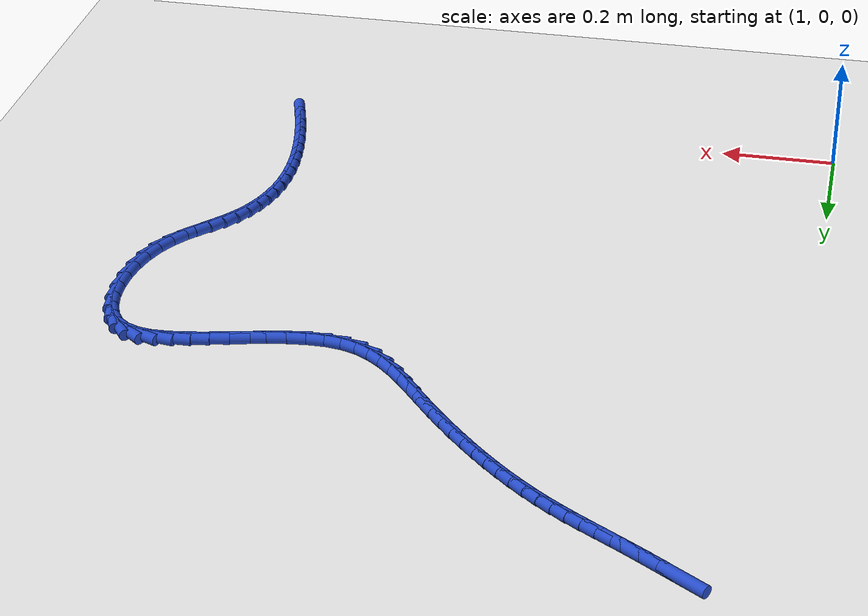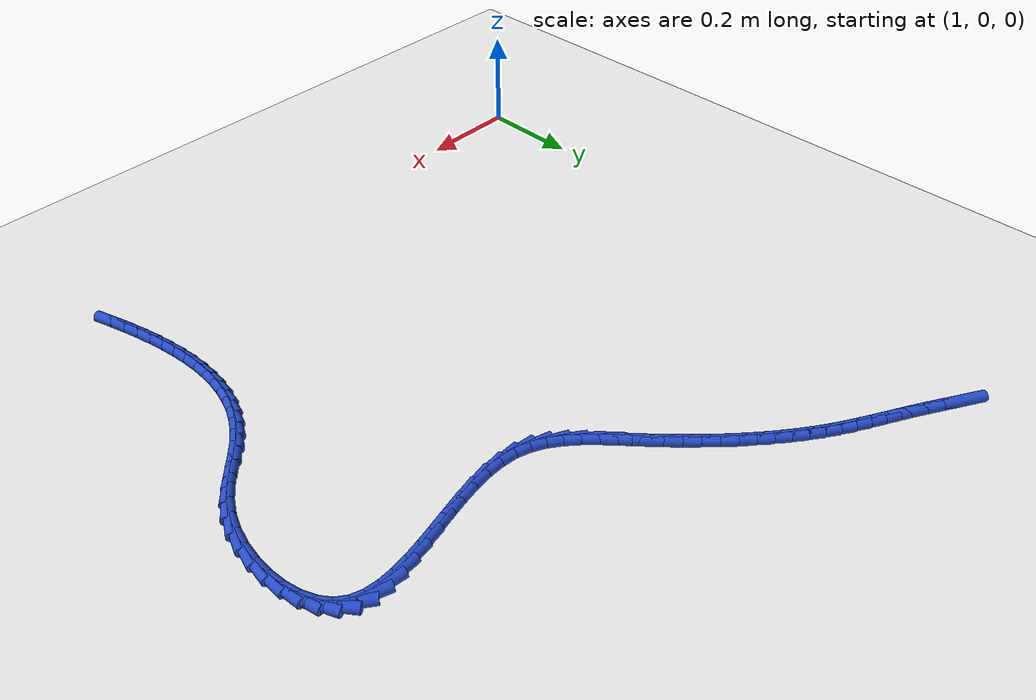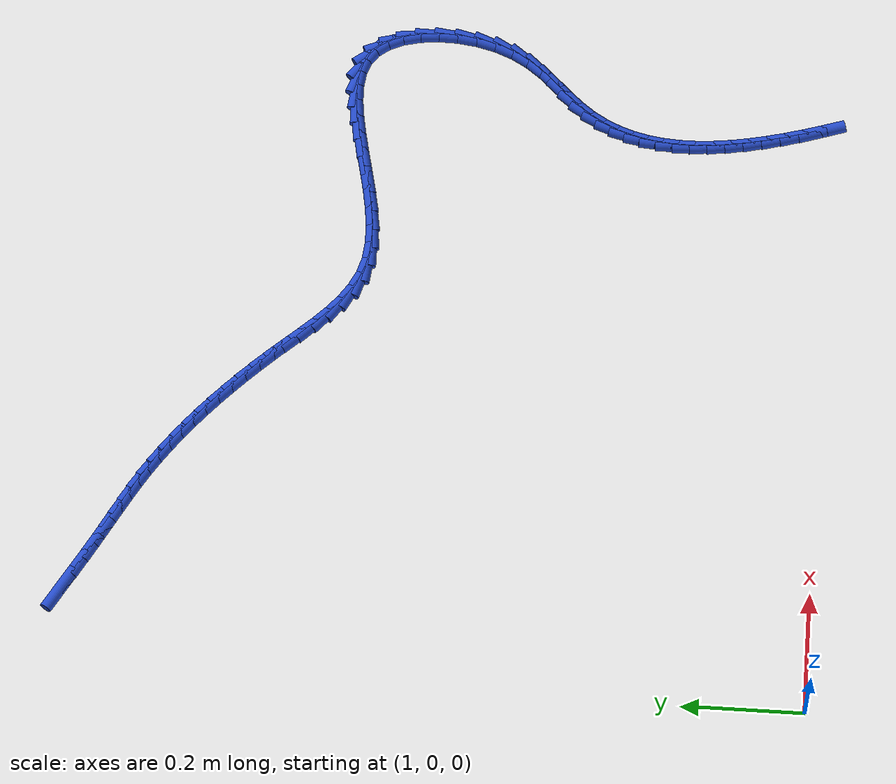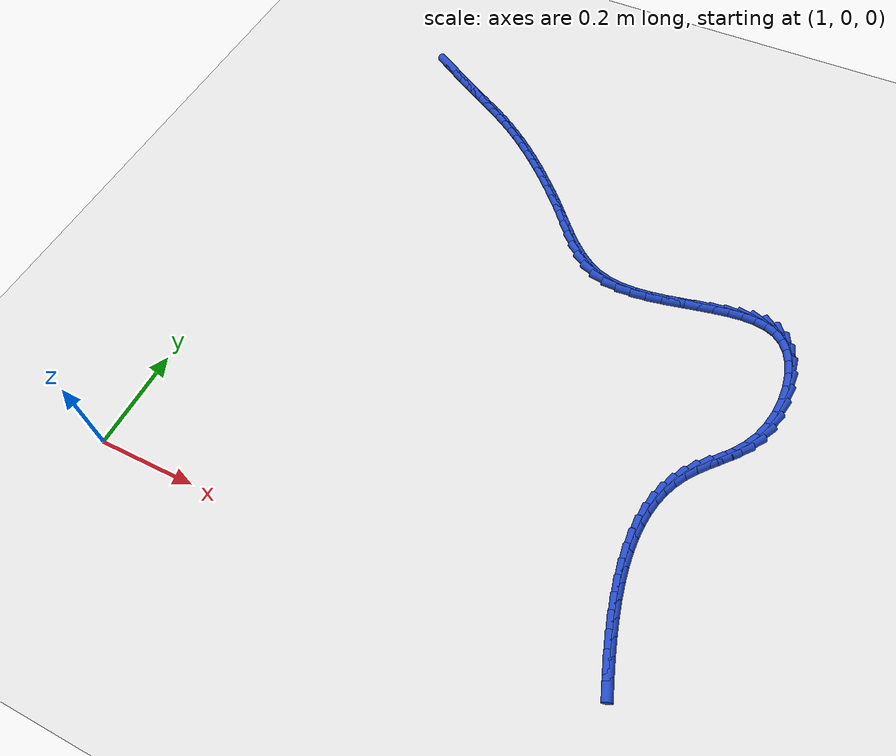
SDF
<sdf version="1.6">
 <world name="default">
  <model name="ground_plane">
   <static>1</static>
   <link name="link">
    <collision name="collision">
     <geometry><plane><normal>0 0 1</normal><size>100 100</size></plane></geometry>
     <surface><friction><ode><mu>100</mu><mu2>50</mu2></ode></friction></surface>
    </collision>
    <visual name="visual">
     <cast_shadows>0</cast_shadows>
     <geometry><plane><normal>0 0 1</normal><size>100 100</size></plane></geometry>
     <material>
      <script><uri>file://media/materials/scripts/gazebo.material</uri><name>Gazebo/WhiteGlow</name></script>
     </material>
    </visual>
   </link>
  </model>
  <model name="line">
   <link name="link_68">
    <pose>1.1357770810342989 1.2048211387405365 0.01 0 1.57 -0.5463123329642405</pose>
    <collision name="collision">
     <geometry><cylinder><radius>0.01</radius><length>0.08</length></cylinder></geometry>
    </collision>
    <visual name="visual">
     <material>
      <script><name>Gazebo/Blue</name><uri>file://media/materials/scripts/gazebo.material</uri></script>
     </material>
     <geometry><cylinder><radius>0.01</radius><length>0.08</length></cylinder></geometry>
    </visual>
   </link>
   <link name="link_69">
    <pose>1.1661784131051967 1.1863358281987884 0.01 0 1.57 -0.5458303144156916</pose>
    <collision name="collision">
     <geometry><cylinder><radius>0.01</radius><length>0.08</length></cylinder></geometry>
    </collision>
    <visual name="visual">
     <material>
      <script><name>Gazebo/Blue</name><uri>file://media/materials/scripts/gazebo.material</uri></script>
     </material>
     <geometry><cylinder><radius>0.01</radius><length>0.08</length></cylinder></geometry>
    </visual>
   </link>
   <link name="link_70">
    <pose>1.1953849499846465 1.1685962815901338 0.01 0 1.57 -0.5340886859717227</pose>
    <collision name="collision">
     <geometry><cylinder><radius>0.01</radius><length>0.08</length></cylinder></geometry>
    </collision>
    <visual name="visual">
     <material>
      <script><name>Gazebo/Blue</name><uri>file://media/materials/scripts/gazebo.material</uri></script>
     </material>
     <geometry><cylinder><radius>0.01</radius><length>0.08</length></cylinder></geometry>
    </visual>
   </link>
   <link name="link_71">
    <pose>1.2229783987465066 1.1522768935042664 0.01 0 1.57 -0.5232775400020789</pose>
    <collision name="collision">
     <geometry><cylinder><radius>0.01</radius><length>0.08</length></cylinder></geometry>
    </collision>
    <visual name="visual">
     <material>
      <script><name>Gazebo/Blue</name><uri>file://media/materials/scripts/gazebo.material</uri></script>
     </material>
     <geometry><cylinder><radius>0.01</radius><length>0.08</length></cylinder></geometry>
    </visual>
   </link>
   <link name="link_72">
    <pose>1.2490227786914303 1.1372513168399483 0.01 0 1.57 -0.5201498486941989</pose>
    <collision name="collision">
     <geometry><cylinder><radius>0.01</radius><length>0.08</length></cylinder></geometry>
    </collision>
    <visual name="visual">
     <material>
      <script><name>Gazebo/Blue</name><uri>file://media/materials/scripts/gazebo.material</uri></script>
     </material>
     <geometry><cylinder><radius>0.01</radius><length>0.08</length></cylinder></geometry>
    </visual>
   </link>
   <link name="link_73">
    <pose>1.2737738505533074 1.1230748726126907 0.01 0 1.57 -0.5261728567336321</pose>
    <collision name="collision">
     <geometry><cylinder><radius>0.01</radius><length>0.08</length></cylinder></geometry>
    </collision>
    <visual name="visual">
     <material>
      <script><name>Gazebo/Blue</name><uri>file://media/materials/scripts/gazebo.material</uri></script>
     </material>
     <geometry><cylinder><radius>0.01</radius><length>0.08</length></cylinder></geometry>
    </visual>
   </link>
   <link name="link_74">
    <pose>1.2974878639194398 1.109302070236542 0.01 0 1.57 -0.5421723792940519</pose>
    <collision name="collision">
     <geometry><cylinder><radius>0.01</radius><length>0.08</length></cylinder></geometry>
    </collision>
    <visual name="visual">
     <material>
      <script><name>Gazebo/Blue</name><uri>file://media/materials/scripts/gazebo.material</uri></script>
     </material>
     <geometry><cylinder><radius>0.01</radius><length>0.08</length></cylinder></geometry>
    </visual>
   </link>
   <link name="link_75">
    <pose>1.3204210683771311 1.0954874191255504 0.01 0 1.57 -0.5680603384175988</pose>
    <collision name="collision">
     <geometry><cylinder><radius>0.01</radius><length>0.08</length></cylinder></geometry>
    </collision>
    <visual name="visual">
     <material>
      <script><name>Gazebo/Blue</name><uri>file://media/materials/scripts/gazebo.material</uri></script>
     </material>
     <geometry><cylinder><radius>0.01</radius><length>0.08</length></cylinder></geometry>
    </visual>
   </link>
   <link name="link_76">
    <pose>1.3428297135136829 1.0811854286937643 0.01 0 1.57 -0.6015272644035145</pose>
    <collision name="collision">
     <geometry><cylinder><radius>0.01</radius><length>0.08</length></cylinder></geometry>
    </collision>
    <visual name="visual">
     <material>
      <script><name>Gazebo/Blue</name><uri>file://media/materials/scripts/gazebo.material</uri></script>
     </material>
     <geometry><cylinder><radius>0.01</radius><length>0.08</length></cylinder></geometry>
    </visual>
   </link>
   <link name="link_77">
    <pose>1.364939235853453 1.066009867217549 0.01 0 1.57 -0.6350300738799874</pose>
    <collision name="collision">
     <geometry><cylinder><radius>0.01</radius><length>0.08</length></cylinder></geometry>
    </collision>
    <visual name="visual">
     <material>
      <script><name>Gazebo/Blue</name><uri>file://media/materials/scripts/gazebo.material</uri></script>
     </material>
     <geometry><cylinder><radius>0.01</radius><length>0.08</length></cylinder></geometry>
    </visual>
   </link>
   <link name="link_78">
    <pose>1.3868079012809622 1.0498960010971938 0.01 0 1.57 -0.6663597182857146</pose>
    <collision name="collision">
     <geometry><cylinder><radius>0.01</radius><length>0.08</length></cylinder></geometry>
    </collision>
    <visual name="visual">
     <material>
      <script><name>Gazebo/Blue</name><uri>file://media/materials/scripts/gazebo.material</uri></script>
     </material>
     <geometry><cylinder><radius>0.01</radius><length>0.08</length></cylinder></geometry>
    </visual>
   </link>
   <link name="link_79">
    <pose>1.4084375502151882 1.0328876126860969 0.01 0 1.57 -0.695620978715392</pose>
    <collision name="collision">
     <geometry><cylinder><radius>0.01</radius><length>0.08</length></cylinder></geometry>
    </collision>
    <visual name="visual">
     <material>
      <script><name>Gazebo/Blue</name><uri>file://media/materials/scripts/gazebo.material</uri></script>
     </material>
     <geometry><cylinder><radius>0.01</radius><length>0.08</length></cylinder></geometry>
    </visual>
   </link>
   <link name="link_80">
    <pose>1.4298299793810063 1.0150285683689932 0.01 0 1.57 -0.722923203615513</pose>
    <collision name="collision">
     <geometry><cylinder><radius>0.01</radius><length>0.08</length></cylinder></geometry>
    </collision>
    <visual name="visual">
     <material>
      <script><name>Gazebo/Blue</name><uri>file://media/materials/scripts/gazebo.material</uri></script>
     </material>
     <geometry><cylinder><radius>0.01</radius><length>0.08</length></cylinder></geometry>
    </visual>
   </link>
   <link name="link_81">
    <pose>1.4509869855032915 0.996362734530617 0.01 0 1.57 -0.7483755914364022</pose>
    <collision name="collision">
     <geometry><cylinder><radius>0.01</radius><length>0.08</length></cylinder></geometry>
    </collision>
    <visual name="visual">
     <material>
      <script><name>Gazebo/Blue</name><uri>file://media/materials/scripts/gazebo.material</uri></script>
     </material>
     <geometry><cylinder><radius>0.01</radius><length>0.08</length></cylinder></geometry>
    </visual>
   </link>
   <link name="link_82">
    <pose>1.4719103653069192 0.9769339775557031 0.01 0 1.57 -0.7720849208307531</pose>
    <collision name="collision">
     <geometry><cylinder><radius>0.01</radius><length>0.08</length></cylinder></geometry>
    </collision>
    <visual name="visual">
     <material>
      <script><name>Gazebo/Blue</name><uri>file://media/materials/scripts/gazebo.material</uri></script>
     </material>
     <geometry><cylinder><radius>0.01</radius><length>0.08</length></cylinder></geometry>
    </visual>
   </link>
   <link name="link_83">
    <pose>1.4926019155167638 0.9567861638289865 0.01 0 1.57 -0.7941539271229002</pose>
    <collision name="collision">
     <geometry><cylinder><radius>0.01</radius><length>0.08</length></cylinder></geometry>
    </collision>
    <visual name="visual">
     <material>
      <script><name>Gazebo/Blue</name><uri>file://media/materials/scripts/gazebo.material</uri></script>
     </material>
     <geometry><cylinder><radius>0.01</radius><length>0.08</length></cylinder></geometry>
    </visual>
   </link>
   <link name="link_84">
    <pose>1.5130634328577 0.9359631597352014 0.01 0 1.57 -0.8146801944410829</pose>
    <collision name="collision">
     <geometry><cylinder><radius>0.01</radius><length>0.08</length></cylinder></geometry>
    </collision>
    <visual name="visual">
     <material>
      <script><name>Gazebo/Blue</name><uri>file://media/materials/scripts/gazebo.material</uri></script>
     </material>
     <geometry><cylinder><radius>0.01</radius><length>0.08</length></cylinder></geometry>
    </visual>
   </link>
   <link name="link_85">
    <pose>1.5332967140546034 0.9145088316590827 0.01 0 1.57 -0.83375544834641</pose>
    <collision name="collision">
     <geometry><cylinder><radius>0.01</radius><length>0.08</length></cylinder></geometry>
    </collision>
    <visual name="visual">
     <material>
      <script><name>Gazebo/Blue</name><uri>file://media/materials/scripts/gazebo.material</uri></script>
     </material>
     <geometry><cylinder><radius>0.01</radius><length>0.08</length></cylinder></geometry>
    </visual>
   </link>
   <link name="link_86">
    <pose>1.5533035558323482 0.8924670459853654 0.01 0 1.57 -0.8514618589272555</pose>
    <collision name="collision">
     <geometry><cylinder><radius>0.01</radius><length>0.08</length></cylinder></geometry>
    </collision>
    <visual name="visual">
     <material>
      <script><name>Gazebo/Blue</name><uri>file://media/materials/scripts/gazebo.material</uri></script>
     </material>
     <geometry><cylinder><radius>0.01</radius><length>0.08</length></cylinder></geometry>
    </visual>
   </link>
   <link name="link_87">
    <pose>1.5730858013282956 0.869881766142645 0.01 0 1.57 -0.8622722781272977</pose>
    <collision name="collision">
     <geometry><cylinder><radius>0.01</radius><length>0.08</length></cylinder></geometry>
    </collision>
    <visual name="visual">
     <material>
      <script><name>Gazebo/Blue</name><uri>file://media/materials/scripts/gazebo.material</uri></script>
     </material>
     <geometry><cylinder><radius>0.01</radius><length>0.08</length></cylinder></geometry>
    </visual>
   </link>
   <link name="link_88">
    <pose>1.592725311097373 0.8469642639692991 0.01 0 1.57 -0.8491846023364095</pose>
    <collision name="collision">
     <geometry><cylinder><radius>0.01</radius><length>0.08</length></cylinder></geometry>
    </collision>
    <visual name="visual">
     <material>
      <script><name>Gazebo/Blue</name><uri>file://media/materials/scripts/gazebo.material</uri></script>
     </material>
     <geometry><cylinder><radius>0.01</radius><length>0.08</length></cylinder></geometry>
    </visual>
   </link>
   <link name="link_89">
    <pose>1.6125481294542976 0.8244363751007748 0.01 0 1.57 -0.8079567585711803</pose>
    <collision name="collision">
     <geometry><cylinder><radius>0.01</radius><length>0.08</length></cylinder></geometry>
    </collision>
    <visual name="visual">
     <material>
      <script><name>Gazebo/Blue</name><uri>file://media/materials/scripts/gazebo.material</uri></script>
     </material>
     <geometry><cylinder><radius>0.01</radius><length>0.08</length></cylinder></geometry>
    </visual>
   </link>
   <link name="link_90">
    <pose>1.632926714791288 0.8031169823621721 0.01 0 1.57 -0.7358118674385963</pose>
    <collision name="collision">
     <geometry><cylinder><radius>0.01</radius><length>0.08</length></cylinder></geometry>
    </collision>
    <visual name="visual">
     <material>
      <script><name>Gazebo/Blue</name><uri>file://media/materials/scripts/gazebo.material</uri></script>
     </material>
     <geometry><cylinder><radius>0.01</radius><length>0.08</length></cylinder></geometry>
    </visual>
   </link>
   <link name="link_91">
    <pose>1.654233525500563 0.7838249685785925 0.01 0 1.57 -0.628910202059338</pose>
    <collision name="collision">
     <geometry><cylinder><radius>0.01</radius><length>0.08</length></cylinder></geometry>
    </collision>
    <visual name="visual">
     <material>
      <script><name>Gazebo/Blue</name><uri>file://media/materials/scripts/gazebo.material</uri></script>
     </material>
     <geometry><cylinder><radius>0.01</radius><length>0.08</length></cylinder></geometry>
    </visual>
   </link>
   <link name="link_92">
    <pose>1.6768410199743407 0.7673792165751351 0.01 0 1.57 -0.48452065969462255</pose>
    <collision name="collision">
     <geometry><cylinder><radius>0.01</radius><length>0.08</length></cylinder></geometry>
    </collision>
    <visual name="visual">
     <material>
      <script><name>Gazebo/Blue</name><uri>file://media/materials/scripts/gazebo.material</uri></script>
     </material>
     <geometry><cylinder><radius>0.01</radius><length>0.08</length></cylinder></geometry>
    </visual>
   </link>
   <link name="link_93">
    <pose>1.701121656604841 0.7545986091769015 0.01 0 1.57 -0.3056872672320033</pose>
    <collision name="collision">
     <geometry><cylinder><radius>0.01</radius><length>0.08</length></cylinder></geometry>
    </collision>
    <visual name="visual">
     <material>
      <script><name>Gazebo/Blue</name><uri>file://media/materials/scripts/gazebo.material</uri></script>
     </material>
     <geometry><cylinder><radius>0.01</radius><length>0.08</length></cylinder></geometry>
    </visual>
   </link>
   <link name="link_94">
    <pose>1.7274429744377033 0.7462921599410293 0.01 0 1.57 -0.12733895743373308</pose>
    <collision name="collision">
     <geometry><cylinder><radius>0.01</radius><length>0.08</length></cylinder></geometry>
    </collision>
    <visual name="visual">
     <material>
      <script><name>Gazebo/Blue</name><uri>file://media/materials/scripts/gazebo.material</uri></script>
     </material>
     <geometry><cylinder><radius>0.01</radius><length>0.08</length></cylinder></geometry>
    </visual>
   </link>
   <link name="link_95">
    <pose>1.7558656057356123 0.7426531613665084 0.01 0 1.57 0.0084236511318557</pose>
    <collision name="collision">
     <geometry><cylinder><radius>0.01</radius><length>0.08</length></cylinder></geometry>
    </collision>
    <visual name="visual">
     <material>
      <script><name>Gazebo/Blue</name><uri>file://media/materials/scripts/gazebo.material</uri></script>
     </material>
     <geometry><cylinder><radius>0.01</radius><length>0.08</length></cylinder></geometry>
    </visual>
   </link>
   <link name="link_96">
    <pose>1.7859675974917444 0.7429067360411731 0.01 0 1.57 0.1045553923350768</pose>
    <collision name="collision">
     <geometry><cylinder><radius>0.01</radius><length>0.08</length></cylinder></geometry>
    </collision>
    <visual name="visual">
     <material>
      <script><name>Gazebo/Blue</name><uri>file://media/materials/scripts/gazebo.material</uri></script>
     </material>
     <geometry><cylinder><radius>0.01</radius><length>0.08</length></cylinder></geometry>
    </visual>
   </link>
   <link name="link_97">
    <pose>1.8172846693580387 0.7461930887967738 0.01 0 1.57 0.16862647370334405</pose>
    <collision name="collision">
     <geometry><cylinder><radius>0.01</radius><length>0.08</length></cylinder></geometry>
    </collision>
    <visual name="visual">
     <material>
      <script><name>Gazebo/Blue</name><uri>file://media/materials/scripts/gazebo.material</uri></script>
     </material>
     <geometry><cylinder><radius>0.01</radius><length>0.08</length></cylinder></geometry>
    </visual>
   </link>
   <link name="link_98">
    <pose>1.8493525409864335 0.75165242446506 0.01 0 1.57 0.20634385514683526</pose>
    <collision name="collision">
     <geometry><cylinder><radius>0.01</radius><length>0.08</length></cylinder></geometry>
    </collision>
    <visual name="visual">
     <material>
      <script><name>Gazebo/Blue</name><uri>file://media/materials/scripts/gazebo.material</uri></script>
     </material>
     <geometry><cylinder><radius>0.01</radius><length>0.08</length></cylinder></geometry>
    </visual>
   </link>
   <link name="link_99">
    <pose>1.881706932028867 0.7584249478777815 0.01 0 1.57 0.2209054252460275</pose>
    <collision name="collision">
     <geometry><cylinder><radius>0.01</radius><length>0.08</length></cylinder></geometry>
    </collision>
    <visual name="visual">
     <material>
      <script><name>Gazebo/Blue</name><uri>file://media/materials/scripts/gazebo.material</uri></script>
     </material>
     <geometry><cylinder><radius>0.01</radius><length>0.08</length></cylinder></geometry>
    </visual>
   </link>
   <link name="link_100">
    <pose>1.9138835621372785 0.7656508638666881 0.01 0 1.57 0.21297542789073065</pose>
    <collision name="collision">
     <geometry><cylinder><radius>0.01</radius><length>0.08</length></cylinder></geometry>
    </collision>
    <visual name="visual">
     <material>
      <script><name>Gazebo/Blue</name><uri>file://media/materials/scripts/gazebo.material</uri></script>
     </material>
     <geometry><cylinder><radius>0.01</radius><length>0.08</length></cylinder></geometry>
    </visual>
   </link>
   <link name="link_101">
    <pose>1.945418150963607 0.7724703772635303 0.01 0 1.57 0.18051840983524722</pose>
    <collision name="collision">
     <geometry><cylinder><radius>0.01</radius><length>0.08</length></cylinder></geometry>
    </collision>
    <visual name="visual">
     <material>
      <script><name>Gazebo/Blue</name><uri>file://media/materials/scripts/gazebo.material</uri></script>
     </material>
     <geometry><cylinder><radius>0.01</radius><length>0.08</length></cylinder></geometry>
    </visual>
   </link>
   <link name="link_102">
    <pose>1.9758464181597897 0.7780236929000572 0.01 0 1.57 0.11821271880863611</pose>
    <collision name="collision">
     <geometry><cylinder><radius>0.01</radius><length>0.08</length></cylinder></geometry>
    </collision>
    <visual name="visual">
     <material>
      <script><name>Gazebo/Blue</name><uri>file://media/materials/scripts/gazebo.material</uri></script>
     </material>
     <geometry><cylinder><radius>0.01</radius><length>0.08</length></cylinder></geometry>
    </visual>
   </link>
   <link name="link_103">
    <pose>2.0047040833777667 0.7814510156080194 0.01 0 1.57 0.016459691691075782</pose>
    <collision name="collision">
     <geometry><cylinder><radius>0.01</radius><length>0.08</length></cylinder></geometry>
    </collision>
    <visual name="visual">
     <material>
      <script><name>Gazebo/Blue</name><uri>file://media/materials/scripts/gazebo.material</uri></script>
     </material>
     <geometry><cylinder><radius>0.01</radius><length>0.08</length></cylinder></geometry>
    </visual>
   </link>
   <link name="link_104">
    <pose>2.031526866269475 0.7818925502191663 0.01 0 1.57 -0.13904520894071898</pose>
    <collision name="collision">
     <geometry><cylinder><radius>0.01</radius><length>0.08</length></cylinder></geometry>
    </collision>
    <visual name="visual">
     <material>
      <script><name>Gazebo/Blue</name><uri>file://media/materials/scripts/gazebo.material</uri></script>
     </material>
     <geometry><cylinder><radius>0.01</radius><length>0.08</length></cylinder></geometry>
    </visual>
   </link>
   <link name="link_105">
    <pose>2.0558504864868556 0.7784885015652481 0.01 0 1.57 -0.36284260278447733</pose>
    <collision name="collision">
     <geometry><cylinder><radius>0.01</radius><length>0.08</length></cylinder></geometry>
    </collision>
    <visual name="visual">
     <material>
      <script><name>Gazebo/Blue</name><uri>file://media/materials/scripts/gazebo.material</uri></script>
     </material>
     <geometry><cylinder><radius>0.01</radius><length>0.08</length></cylinder></geometry>
    </visual>
   </link>
   <link name="link_106">
    <pose>2.0772106636818455 0.7703790744780145 0.01 0 1.57 -0.6514266339358388</pose>
    <collision name="collision">
     <geometry><cylinder><radius>0.01</radius><length>0.08</length></cylinder></geometry>
    </collision>
    <visual name="visual">
     <material>
      <script><name>Gazebo/Blue</name><uri>file://media/materials/scripts/gazebo.material</uri></script>
     </material>
     <geometry><cylinder><radius>0.01</radius><length>0.08</length></cylinder></geometry>
    </visual>
   </link>
   <link name="link_107">
    <pose>2.095143505523408 0.756706036726898 0.01 0 1.57 -0.9439148592866845</pose>
    <collision name="collision">
     <geometry><cylinder><radius>0.01</radius><length>0.08</length></cylinder></geometry>
    </collision>
    <visual name="visual">
     <material>
      <script><name>Gazebo/Blue</name><uri>file://media/materials/scripts/gazebo.material</uri></script>
     </material>
     <geometry><cylinder><radius>0.01</radius><length>0.08</length></cylinder></geometry>
    </visual>
   </link>
   <link name="link_108">
    <pose>2.1093163440515665 0.7371397295749088 0.01 0 1.57 -1.1692123052958023</pose>
    <collision name="collision">
     <geometry><cylinder><radius>0.01</radius><length>0.08</length></cylinder></geometry>
    </collision>
    <visual name="visual">
     <material>
      <script><name>Gazebo/Blue</name><uri>file://media/materials/scripts/gazebo.material</uri></script>
     </material>
     <geometry><cylinder><radius>0.01</radius><length>0.08</length></cylinder></geometry>
    </visual>
   </link>
   <link name="link_109">
    <pose>2.1197180453631868 0.7126456376975037 0.01 0 1.57 -1.3391033209580923</pose>
    <collision name="collision">
     <geometry><cylinder><radius>0.01</radius><length>0.08</length></cylinder></geometry>
    </collision>
    <visual name="visual">
     <material>
      <script><name>Gazebo/Blue</name><uri>file://media/materials/scripts/gazebo.material</uri></script>
     </material>
     <geometry><cylinder><radius>0.01</radius><length>0.08</length></cylinder></geometry>
    </visual>
   </link>
   <link name="link_110">
    <pose>2.1263858178353443 0.6843839691110243 0.01 0 1.57 -1.4748448871292472</pose>
    <collision name="collision">
     <geometry><cylinder><radius>0.01</radius><length>0.08</length></cylinder></geometry>
    </collision>
    <visual name="visual">
     <material>
      <script><name>Gazebo/Blue</name><uri>file://media/materials/scripts/gazebo.material</uri></script>
     </material>
     <geometry><cylinder><radius>0.01</radius><length>0.08</length></cylinder></geometry>
    </visual>
   </link>
   <link name="link_111">
    <pose>2.1293568698451155 0.653514931831813 0.01 0 1.57 1.5494956790149559</pose>
    <collision name="collision">
     <geometry><cylinder><radius>0.01</radius><length>0.08</length></cylinder></geometry>
    </collision>
    <visual name="visual">
     <material>
      <script><name>Gazebo/Blue</name><uri>file://media/materials/scripts/gazebo.material</uri></script>
     </material>
     <geometry><cylinder><radius>0.01</radius><length>0.08</length></cylinder></geometry>
    </visual>
   </link>
   <link name="link_112">
    <pose>2.1286684097695767 0.6211987338762124 0.01 0 1.57 1.4393395874036088</pose>
    <collision name="collision">
     <geometry><cylinder><radius>0.01</radius><length>0.08</length></cylinder></geometry>
    </collision>
    <visual name="visual">
     <material>
      <script><name>Gazebo/Blue</name><uri>file://media/materials/scripts/gazebo.material</uri></script>
     </material>
     <geometry><cylinder><radius>0.01</radius><length>0.08</length></cylinder></geometry>
    </visual>
   </link>
   <link name="link_113">
    <pose>2.124357645985804 0.5885955832605646 0.01 0 1.57 1.3269040284185774</pose>
    <collision name="collision">
     <geometry><cylinder><radius>0.01</radius><length>0.08</length></cylinder></geometry>
    </collision>
    <visual name="visual">
     <material>
      <script><name>Gazebo/Blue</name><uri>file://media/materials/scripts/gazebo.material</uri></script>
     </material>
     <geometry><cylinder><radius>0.01</radius><length>0.08</length></cylinder></geometry>
    </visual>
   </link>
   <link name="link_114">
    <pose>2.116461786870872 0.5568656880012111 0.01 0 1.57 1.2029760745231104</pose>
    <collision name="collision">
     <geometry><cylinder><radius>0.01</radius><length>0.08</length></cylinder></geometry>
    </collision>
    <visual name="visual">
     <material>
      <script><name>Gazebo/Blue</name><uri>file://media/materials/scripts/gazebo.material</uri></script>
     </material>
     <geometry><cylinder><radius>0.01</radius><length>0.08</length></cylinder></geometry>
    </visual>
   </link>
   <link name="link_115">
    <pose>2.1050180408018586 0.5271692561144943 0.01 0 1.57 1.059958356244164</pose>
    <collision name="collision">
     <geometry><cylinder><radius>0.01</radius><length>0.08</length></cylinder></geometry>
    </collision>
    <visual name="visual">
     <material>
      <script><name>Gazebo/Blue</name><uri>file://media/materials/scripts/gazebo.material</uri></script>
     </material>
     <geometry><cylinder><radius>0.01</radius><length>0.08</length></cylinder></geometry>
    </visual>
   </link>
   <link name="link_116">
    <pose>2.0901148987217497 0.5005783159175935 0.01 0 1.57 0.9301877490406167</pose>
    <collision name="collision">
     <geometry><cylinder><radius>0.01</radius><length>0.08</length></cylinder></geometry>
    </collision>
    <visual name="visual">
     <material>
      <script><name>Gazebo/Blue</name><uri>file://media/materials/scripts/gazebo.material</uri></script>
     </material>
     <geometry><cylinder><radius>0.01</radius><length>0.08</length></cylinder></geometry>
    </visual>
   </link>
   <link name="link_117">
    <pose>2.0725267226750512 0.4769855493684923 0.01 0 1.57 0.8477892521971221</pose>
    <collision name="collision">
     <geometry><cylinder><radius>0.01</radius><length>0.08</length></cylinder></geometry>
    </collision>
    <visual name="visual">
     <material>
      <script><name>Gazebo/Blue</name><uri>file://media/materials/scripts/gazebo.material</uri></script>
     </material>
     <geometry><cylinder><radius>0.01</radius><length>0.08</length></cylinder></geometry>
    </visual>
   </link>
   <link name="link_118">
    <pose>2.0535170676876353 0.45544247751281836 0.01 0 1.57 0.8182742680542782</pose>
    <collision name="collision">
     <geometry><cylinder><radius>0.01</radius><length>0.08</length></cylinder></geometry>
    </collision>
    <visual name="visual">
     <material>
      <script><name>Gazebo/Blue</name><uri>file://media/materials/scripts/gazebo.material</uri></script>
     </material>
     <geometry><cylinder><radius>0.01</radius><length>0.08</length></cylinder></geometry>
    </visual>
   </link>
   <link name="link_119">
    <pose>2.034360022140822 0.4349825094297146 0.01 0 1.57 0.8456036130090541</pose>
    <collision name="collision">
     <geometry><cylinder><radius>0.01</radius><length>0.08</length></cylinder></geometry>
    </collision>
    <visual name="visual">
     <material>
      <script><name>Gazebo/Blue</name><uri>file://media/materials/scripts/gazebo.material</uri></script>
     </material>
     <geometry><cylinder><radius>0.01</radius><length>0.08</length></cylinder></geometry>
    </visual>
   </link>
   <link name="link_120">
    <pose>2.0163296744159354 0.4146390541983242 0.01 0 1.57 0.9312844738053707</pose>
    <collision name="collision">
     <geometry><cylinder><radius>0.01</radius><length>0.08</length></cylinder></geometry>
    </collision>
    <visual name="visual">
     <material>
      <script><name>Gazebo/Blue</name><uri>file://media/materials/scripts/gazebo.material</uri></script>
     </material>
     <geometry><cylinder><radius>0.01</radius><length>0.08</length></cylinder></geometry>
    </visual>
   </link>
   <link name="link_121">
    <pose>2.0006133291762986 0.3935088379782931 0.01 0 1.57 1.039099049548191</pose>
    <collision name="collision">
     <geometry><cylinder><radius>0.01</radius><length>0.08</length></cylinder></geometry>
    </collision>
    <visual name="visual">
     <material>
      <script><name>Gazebo/Blue</name><uri>file://media/materials/scripts/gazebo.material</uri></script>
     </material>
     <geometry><cylinder><radius>0.01</radius><length>0.08</length></cylinder></geometry>
    </visual>
   </link>
   <link name="link_122">
    <pose>1.9875531608956165 0.37130519079790664 0.01 0 1.57 1.1446901549400776</pose>
    <collision name="collision">
     <geometry><cylinder><radius>0.01</radius><length>0.08</length></cylinder></geometry>
    </collision>
    <visual name="visual">
     <material>
      <script><name>Gazebo/Blue</name><uri>file://media/materials/scripts/gazebo.material</uri></script>
     </material>
     <geometry><cylinder><radius>0.01</radius><length>0.08</length></cylinder></geometry>
    </visual>
   </link>
   <link name="link_123">
    <pose>1.9770149540216007 0.3480890150909951 0.01 0 1.57 1.2452820791570376</pose>
    <collision name="collision">
     <geometry><cylinder><radius>0.01</radius><length>0.08</length></cylinder></geometry>
    </collision>
    <visual name="visual">
     <material>
      <script><name>Gazebo/Blue</name><uri>file://media/materials/scripts/gazebo.material</uri></script>
     </material>
     <geometry><cylinder><radius>0.01</radius><length>0.08</length></cylinder></geometry>
    </visual>
   </link>
   <link name="link_124">
    <pose>1.968859143187175 0.3239251164965229 0.01 0 1.57 1.3389638619386022</pose>
    <collision name="collision">
     <geometry><cylinder><radius>0.01</radius><length>0.08</length></cylinder></geometry>
    </collision>
    <visual name="visual">
     <material>
      <script><name>Gazebo/Blue</name><uri>file://media/materials/scripts/gazebo.material</uri></script>
     </material>
     <geometry><cylinder><radius>0.01</radius><length>0.08</length></cylinder></geometry>
    </visual>
   </link>
   <link name="link_125">
    <pose>1.9629461630252631 0.29887830065345544 0.01 0 1.57 1.4245551565620969</pose>
    <collision name="collision">
     <geometry><cylinder><radius>0.01</radius><length>0.08</length></cylinder></geometry>
    </collision>
    <visual name="visual">
     <material>
      <script><name>Gazebo/Blue</name><uri>file://media/materials/scripts/gazebo.material</uri></script>
     </material>
     <geometry><cylinder><radius>0.01</radius><length>0.08</length></cylinder></geometry>
    </visual>
   </link>
   <link name="link_126">
    <pose>1.9591364481687876 0.2730133732007577 0.01 0 1.57 1.5015556732678494</pose>
    <collision name="collision">
     <geometry><cylinder><radius>0.01</radius><length>0.08</length></cylinder></geometry>
    </collision>
    <visual name="visual">
     <material>
      <script><name>Gazebo/Blue</name><uri>file://media/materials/scripts/gazebo.material</uri></script>
     </material>
     <geometry><cylinder><radius>0.01</radius><length>0.08</length></cylinder></geometry>
    </visual>
   </link>
   <link name="link_127">
    <pose>1.9572904332506722 0.2463951397773946 0.01 0 1.57 1.5699950467024115</pose>
    <collision name="collision">
     <geometry><cylinder><radius>0.01</radius><length>0.08</length></cylinder></geometry>
    </collision>
    <visual name="visual">
     <material>
      <script><name>Gazebo/Blue</name><uri>file://media/materials/scripts/gazebo.material</uri></script>
     </material>
     <geometry><cylinder><radius>0.01</radius><length>0.08</length></cylinder></geometry>
    </visual>
   </link>
   <link name="link_128">
    <pose>1.9572685529038407 0.2190884060223314 0.01 0 1.57 -1.5113368395147995</pose>
    <collision name="collision">
     <geometry><cylinder><radius>0.01</radius><length>0.08</length></cylinder></geometry>
    </collision>
    <visual name="visual">
     <material>
      <script><name>Gazebo/Blue</name><uri>file://media/materials/scripts/gazebo.material</uri></script>
     </material>
     <geometry><cylinder><radius>0.01</radius><length>0.08</length></cylinder></geometry>
    </visual>
   </link>
   <link name="link_129">
    <pose>1.958931241761217 0.19115797757453307 0.01 0 1.57 -1.458675702018673</pose>
    <collision name="collision">
     <geometry><cylinder><radius>0.01</radius><length>0.08</length></cylinder></geometry>
    </collision>
    <visual name="visual">
     <material>
      <script><name>Gazebo/Blue</name><uri>file://media/materials/scripts/gazebo.material</uri></script>
     </material>
     <geometry><cylinder><radius>0.01</radius><length>0.08</length></cylinder></geometry>
    </visual>
   </link>
   <link name="link_130">
    <pose>1.962138934455723 0.16266866007296452 0.01 0 1.57 -1.4129557265586965</pose>
    <collision name="collision">
     <geometry><cylinder><radius>0.01</radius><length>0.08</length></cylinder></geometry>
    </collision>
    <visual name="visual">
     <material>
      <script><name>Gazebo/Blue</name><uri>file://media/materials/scripts/gazebo.material</uri></script>
     </material>
     <geometry><cylinder><radius>0.01</radius><length>0.08</length></cylinder></geometry>
    </visual>
   </link>
   <link name="link_131">
    <pose>1.9667520656202833 0.1336852591565909 0.01 0 1.57 -1.3735162179560525</pose>
    <collision name="collision">
     <geometry><cylinder><radius>0.01</radius><length>0.08</length></cylinder></geometry>
    </collision>
    <visual name="visual">
     <material>
      <script><name>Gazebo/Blue</name><uri>file://media/materials/scripts/gazebo.material</uri></script>
     </material>
     <geometry><cylinder><radius>0.01</radius><length>0.08</length></cylinder></geometry>
    </visual>
   </link>
   <link name="link_132">
    <pose>1.9726310698878207 0.10427258046437732 0.01 0 1.57 -1.339739912938519</pose>
    <collision name="collision">
     <geometry><cylinder><radius>0.01</radius><length>0.08</length></cylinder></geometry>
    </collision>
    <visual name="visual">
     <material>
      <script><name>Gazebo/Blue</name><uri>file://media/materials/scripts/gazebo.material</uri></script>
     </material>
     <geometry><cylinder><radius>0.01</radius><length>0.08</length></cylinder></geometry>
    </visual>
   </link>
   <link name="link_133">
    <pose>1.979636381891259 0.07449542963528867 0.01 0 1.57 -1.31107664160474</pose>
    <collision name="collision">
     <geometry><cylinder><radius>0.01</radius><length>0.08</length></cylinder></geometry>
    </collision>
    <visual name="visual">
     <material>
      <script><name>Gazebo/Blue</name><uri>file://media/materials/scripts/gazebo.material</uri></script>
     </material>
     <geometry><cylinder><radius>0.01</radius><length>0.08</length></cylinder></geometry>
    </visual>
   </link>
   <link name="link_134">
    <pose>1.9876284362635208 0.044418612308290466 0.01 0 1.57 -1.287053138060381</pose>
    <collision name="collision">
     <geometry><cylinder><radius>0.01</radius><length>0.08</length></cylinder></geometry>
    </collision>
    <visual name="visual">
     <material>
      <script><name>Gazebo/Blue</name><uri>file://media/materials/scripts/gazebo.material</uri></script>
     </material>
     <geometry><cylinder><radius>0.01</radius><length>0.08</length></cylinder></geometry>
    </visual>
   </link>
   <link name="link_135">
    <pose>1.9964676676375315 0.014106934122346919 0.01 0 1.57 -1.2672749355185484</pose>
    <collision name="collision">
     <geometry><cylinder><radius>0.01</radius><length>0.08</length></cylinder></geometry>
    </collision>
    <visual name="visual">
     <material>
      <script><name>Gazebo/Blue</name><uri>file://media/materials/scripts/gazebo.material</uri></script>
     </material>
     <geometry><cylinder><radius>0.01</radius><length>0.08</length></cylinder></geometry>
    </visual>
   </link>
  </model>
 </world>
</sdf>
